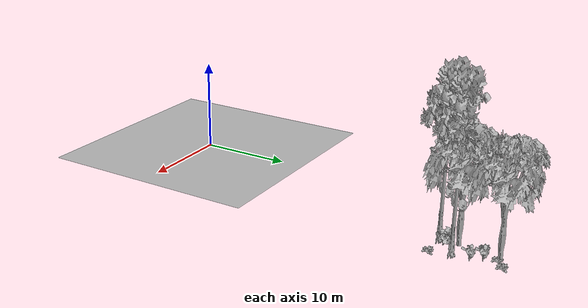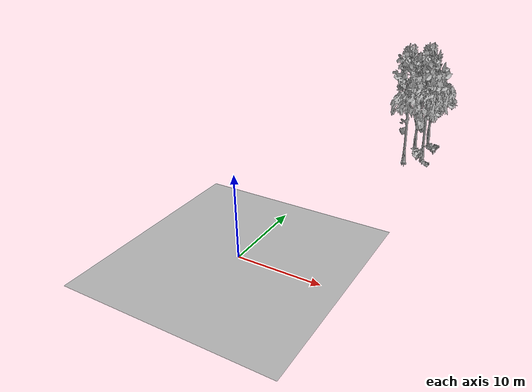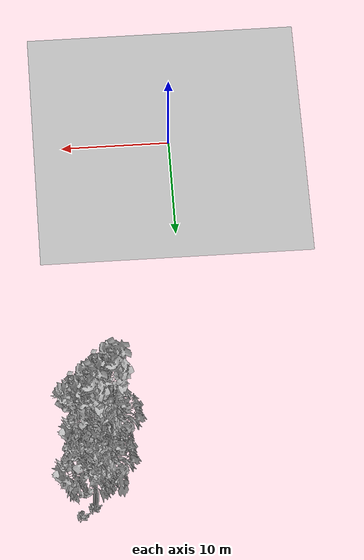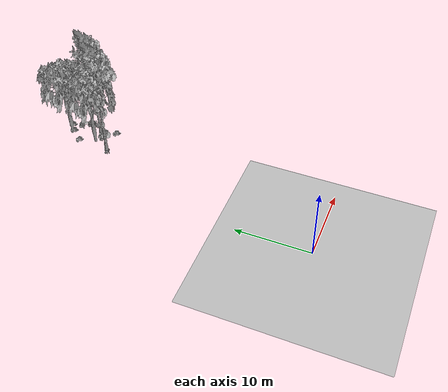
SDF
<sdf version="1.7">
 <world name="default">
  <model name="ground_plane">
   <static>1</static>
   <link name="link">
    <collision name="collision">
     <pose>-50 0 0 0 -0 0</pose>
     <geometry><plane><normal>0 0 1</normal><size>80 80</size></plane></geometry>
     <surface><contact><ode><min_depth>0.01</min_depth><max_vel>0</max_vel></ode></contact></surface>
    </collision>
    <visual name="grass">
     <cast_shadows>0</cast_shadows>
     <geometry>
      <mesh>
       <scale>0.46714285714285714 0.46714285714285714 0.1</scale>
       <uri>file://grass_plane/meshes/grass_plane.dae</uri>
      </mesh>
     </geometry>
    </visual>
   </link>
  </model>
  <model name="Tree 284">
   <static>1</static>
   <pose>8.177045717876801 34.238386337091455 0 1.57079 -0 0</pose>
   <link name="link">
    <collision name="collision">
     <geometry><mesh><scale>3.5 5 3.5</scale><uri>model://tree_2/meshes/tree_2.obj</uri></mesh></geometry>
    </collision>
    <visual name="visual">
     <geometry><mesh><scale>3.5 5 3.5</scale><uri>model://tree_2/meshes/tree_2.obj</uri></mesh></geometry>
    </visual>
   </link>
  </model>
  <model name="Tree 341">
   <static>1</static>
   <pose>8.916696667535234 38.406301700717435 0 1.57079 -0 0</pose>
   <link name="link">
    <collision name="collision">
     <geometry><mesh><scale>3.5 5 3.5</scale><uri>model://tree_2/meshes/tree_2.obj</uri></mesh></geometry>
    </collision>
    <visual name="visual">
     <geometry><mesh><scale>3.5 5 3.5</scale><uri>model://tree_2/meshes/tree_2.obj</uri></mesh></geometry>
    </visual>
   </link>
  </model>
  <model name="Tree 351">
   <static>1</static>
   <pose>7.37423011572335 32.03064320277767 0 1.57079 -0 0</pose>
   <link name="link">
    <collision name="collision">
     <geometry><mesh><scale>3.5 5 3.5</scale><uri>model://tree_9/meshes/tree_9.obj</uri></mesh></geometry>
    </collision>
    <visual name="visual">
     <geometry><mesh><scale>3.5 5 3.5</scale><uri>model://tree_9/meshes/tree_9.obj</uri></mesh></geometry>
    </visual>
   </link>
  </model>
  <model name="Tree 621">
   <static>1</static>
   <pose>9.526085210368606 34.060349059320245 0 1.57079 -0 0</pose>
   <link name="link">
    <collision name="collision">
     <geometry><mesh><scale>3.5 5 3.5</scale><uri>model://tree_9/meshes/tree_9.obj</uri></mesh></geometry>
    </collision>
    <visual name="visual">
     <geometry><mesh><scale>3.5 5 3.5</scale><uri>model://tree_9/meshes/tree_9.obj</uri></mesh></geometry>
    </visual>
   </link>
  </model>
  <model name="Bush 153">
   <static>1</static>
   <pose>9.9323312997155 37.16249858129595 0 1.57079 -0 0</pose>
   <link name="link">
    <collision name="collision">
     <geometry><mesh><scale>2 2 2</scale><uri>model://bush_0/meshes/bush_0.obj</uri></mesh></geometry>
     <surface><contact><collide_without_contact>false</collide_without_contact></contact></surface>
    </collision>
    <visual name="visual">
     <geometry><mesh><scale>2 2 2</scale><uri>model://bush_0/meshes/bush_0.obj</uri></mesh></geometry>
    </visual>
   </link>
  </model>
  <model name="Bush 199">
   <static>1</static>
   <pose>8.976156172904581 33.019261855768946 0 1.57079 -0 0</pose>
   <link name="link">
    <collision name="collision">
     <geometry><mesh><scale>2 2 2</scale><uri>model://bush_1/meshes/bush_1.obj</uri></mesh></geometry>
     <surface><contact><collide_without_contact>false</collide_without_contact></contact></surface>
    </collision>
    <visual name="visual">
     <geometry><mesh><scale>2 2 2</scale><uri>model://bush_1/meshes/bush_1.obj</uri></mesh></geometry>
    </visual>
   </link>
  </model>
  <model name="Bush 393">
   <static>1</static>
   <pose>7.586748789492454 36.49261071964713 0 1.57079 -0 0</pose>
   <link name="link">
    <collision name="collision">
     <geometry><mesh><scale>2 2 2</scale><uri>model://bush_2/meshes/bush_2.obj</uri></mesh></geometry>
     <surface><contact><collide_without_contact>false</collide_without_contact></contact></surface>
    </collision>
    <visual name="visual">
     <geometry><mesh><scale>2 2 2</scale><uri>model://bush_2/meshes/bush_2.obj</uri></mesh></geometry>
    </visual>
   </link>
  </model>
  <model name="Bush 394">
   <static>1</static>
   <pose>10.537964250088493 36.11334662270254 0 1.57079 -0 0</pose>
   <link name="link">
    <collision name="collision">
     <geometry><mesh><scale>2 2 2</scale><uri>model://bush_0/meshes/bush_0.obj</uri></mesh></geometry>
     <surface><contact><collide_without_contact>false</collide_without_contact></contact></surface>
    </collision>
    <visual name="visual">
     <geometry><mesh><scale>2 2 2</scale><uri>model://bush_0/meshes/bush_0.obj</uri></mesh></geometry>
    </visual>
   </link>
  </model>
  <model name="Bush 441">
   <static>1</static>
   <pose>10.153562444496188 39.00913190893296 0 1.57079 -0 0</pose>
   <link name="link">
    <collision name="collision">
     <geometry><mesh><scale>2 2 2</scale><uri>model://bush_2/meshes/bush_2.obj</uri></mesh></geometry>
     <surface><contact><collide_without_contact>false</collide_without_contact></contact></surface>
    </collision>
    <visual name="visual">
     <geometry><mesh><scale>2 2 2</scale><uri>model://bush_2/meshes/bush_2.obj</uri></mesh></geometry>
    </visual>
   </link>
  </model>
  <model name="Bush 568">
   <static>1</static>
   <pose>10.64903303511133 32.234407100150435 0 1.57079 -0 0</pose>
   <link name="link">
    <collision name="collision">
     <geometry><mesh><scale>2 2 2</scale><uri>model://bush_2/meshes/bush_2.obj</uri></mesh></geometry>
     <surface><contact><collide_without_contact>false</collide_without_contact></contact></surface>
    </collision>
    <visual name="visual">
     <geometry><mesh><scale>2 2 2</scale><uri>model://bush_2/meshes/bush_2.obj</uri></mesh></geometry>
    </visual>
   </link>
  </model>
  <model name="Bush 597">
   <static>1</static>
   <pose>9.077629512174411 38.23894710402472 0 1.57079 -0 0</pose>
   <link name="link">
    <collision name="collision">
     <geometry><mesh><scale>2 2 2</scale><uri>model://bush_2/meshes/bush_2.obj</uri></mesh></geometry>
     <surface><contact><collide_without_contact>false</collide_without_contact></contact></surface>
    </collision>
    <visual name="visual">
     <geometry><mesh><scale>2 2 2</scale><uri>model://bush_2/meshes/bush_2.obj</uri></mesh></geometry>
    </visual>
   </link>
  </model>
 </world>
</sdf>
